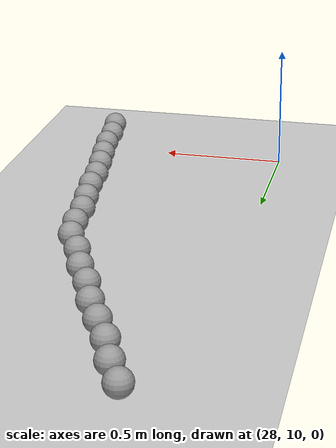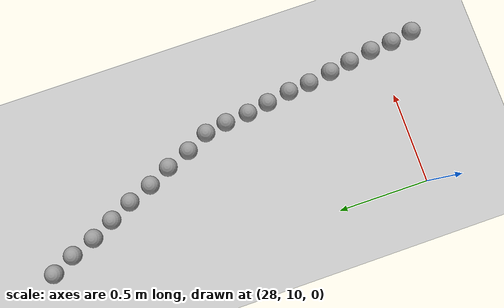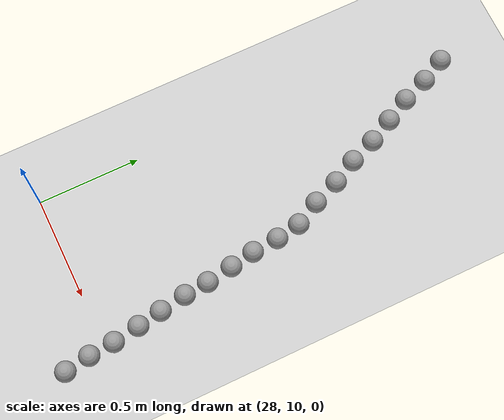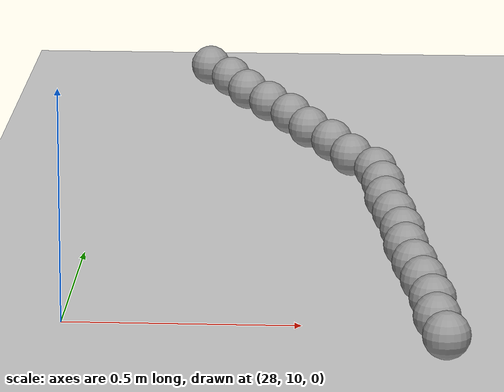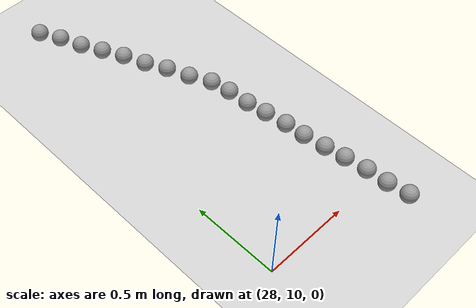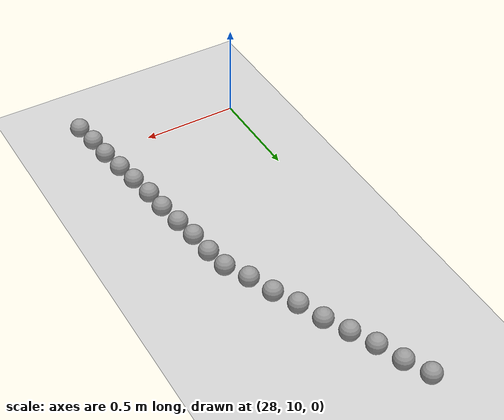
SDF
<sdf version="1.6">
 <world name="default">
  <model name="ground_plane">
   <static>1</static>
   <link name="link">
    <collision name="collision">
     <geometry><plane><normal>0 0 1</normal><size>100 100</size></plane></geometry>
     <surface><friction><ode><mu>100</mu><mu2>50</mu2></ode></friction></surface>
    </collision>
    <visual name="visual">
     <cast_shadows>0</cast_shadows>
     <geometry><plane><normal>0 0 1</normal><size>100 100</size></plane></geometry>
     <material>
      <script><uri>file://media/materials/scripts/gazebo.material</uri><name>Gazebo/Grey</name></script>
     </material>
    </visual>
   </link>
  </model>
  <model name="unit_sphere_0_242">
   <pose>28.180000 12.040000 0.050000 0 -0 0</pose>
   <link name="link">
    <inertial>
     <mass>1</mass>
     <inertia><ixx>0.1</ixx><ixy>0</ixy><ixz>0</ixz><iyy>0.1</iyy><iyz>0</iyz><izz>0.1</izz></inertia>
    </inertial>
    <collision name="collision"><geometry><sphere><radius>0.050000</radius></sphere></geometry></collision>
    <visual name="visual">
     <geometry><sphere><radius>0.050000</radius></sphere></geometry>
     <material>
      <script><name>Gazebo/Grey</name><uri>file://media/materials/scripts/gazebo.material</uri></script>
     </material>
    </visual>
   </link>
  </model>
  <model name="unit_sphere_0_243">
   <pose>28.240000 11.920000 0.050000 0 -0 0</pose>
   <link name="link">
    <inertial>
     <mass>1</mass>
     <inertia><ixx>0.1</ixx><ixy>0</ixy><ixz>0</ixz><iyy>0.1</iyy><iyz>0</iyz><izz>0.1</izz></inertia>
    </inertial>
    <collision name="collision"><geometry><sphere><radius>0.050000</radius></sphere></geometry></collision>
    <visual name="visual">
     <geometry><sphere><radius>0.050000</radius></sphere></geometry>
     <material>
      <script><name>Gazebo/Grey</name><uri>file://media/materials/scripts/gazebo.material</uri></script>
     </material>
    </visual>
   </link>
  </model>
  <model name="unit_sphere_0_244">
   <pose>28.290000 11.790000 0.050000 0 -0 0</pose>
   <link name="link">
    <inertial>
     <mass>1</mass>
     <inertia><ixx>0.1</ixx><ixy>0</ixy><ixz>0</ixz><iyy>0.1</iyy><iyz>0</iyz><izz>0.1</izz></inertia>
    </inertial>
    <collision name="collision"><geometry><sphere><radius>0.050000</radius></sphere></geometry></collision>
    <visual name="visual">
     <geometry><sphere><radius>0.050000</radius></sphere></geometry>
     <material>
      <script><name>Gazebo/Grey</name><uri>file://media/materials/scripts/gazebo.material</uri></script>
     </material>
    </visual>
   </link>
  </model>
  <model name="unit_sphere_0_245">
   <pose>28.350000 11.670000 0.050000 0 -0 0</pose>
   <link name="link">
    <inertial>
     <mass>1</mass>
     <inertia><ixx>0.1</ixx><ixy>0</ixy><ixz>0</ixz><iyy>0.1</iyy><iyz>0</iyz><izz>0.1</izz></inertia>
    </inertial>
    <collision name="collision"><geometry><sphere><radius>0.050000</radius></sphere></geometry></collision>
    <visual name="visual">
     <geometry><sphere><radius>0.050000</radius></sphere></geometry>
     <material>
      <script><name>Gazebo/Grey</name><uri>file://media/materials/scripts/gazebo.material</uri></script>
     </material>
    </visual>
   </link>
  </model>
  <model name="unit_sphere_0_246">
   <pose>28.410000 11.550000 0.050000 0 -0 0</pose>
   <link name="link">
    <inertial>
     <mass>1</mass>
     <inertia><ixx>0.1</ixx><ixy>0</ixy><ixz>0</ixz><iyy>0.1</iyy><iyz>0</iyz><izz>0.1</izz></inertia>
    </inertial>
    <collision name="collision"><geometry><sphere><radius>0.050000</radius></sphere></geometry></collision>
    <visual name="visual">
     <geometry><sphere><radius>0.050000</radius></sphere></geometry>
     <material>
      <script><name>Gazebo/Grey</name><uri>file://media/materials/scripts/gazebo.material</uri></script>
     </material>
    </visual>
   </link>
  </model>
  <model name="unit_sphere_0_247">
   <pose>28.460000 11.420000 0.050000 0 -0 0</pose>
   <link name="link">
    <inertial>
     <mass>1</mass>
     <inertia><ixx>0.1</ixx><ixy>0</ixy><ixz>0</ixz><iyy>0.1</iyy><iyz>0</iyz><izz>0.1</izz></inertia>
    </inertial>
    <collision name="collision"><geometry><sphere><radius>0.050000</radius></sphere></geometry></collision>
    <visual name="visual">
     <geometry><sphere><radius>0.050000</radius></sphere></geometry>
     <material>
      <script><name>Gazebo/Grey</name><uri>file://media/materials/scripts/gazebo.material</uri></script>
     </material>
    </visual>
   </link>
  </model>
  <model name="unit_sphere_0_248">
   <pose>28.520000 11.300000 0.050000 0 -0 0</pose>
   <link name="link">
    <inertial>
     <mass>1</mass>
     <inertia><ixx>0.1</ixx><ixy>0</ixy><ixz>0</ixz><iyy>0.1</iyy><iyz>0</iyz><izz>0.1</izz></inertia>
    </inertial>
    <collision name="collision"><geometry><sphere><radius>0.050000</radius></sphere></geometry></collision>
    <visual name="visual">
     <geometry><sphere><radius>0.050000</radius></sphere></geometry>
     <material>
      <script><name>Gazebo/Grey</name><uri>file://media/materials/scripts/gazebo.material</uri></script>
     </material>
    </visual>
   </link>
  </model>
  <model name="unit_sphere_0_249">
   <pose>28.570000 11.170000 0.050000 0 -0 0</pose>
   <link name="link">
    <inertial>
     <mass>1</mass>
     <inertia><ixx>0.1</ixx><ixy>0</ixy><ixz>0</ixz><iyy>0.1</iyy><iyz>0</iyz><izz>0.1</izz></inertia>
    </inertial>
    <collision name="collision"><geometry><sphere><radius>0.050000</radius></sphere></geometry></collision>
    <visual name="visual">
     <geometry><sphere><radius>0.050000</radius></sphere></geometry>
     <material>
      <script><name>Gazebo/Grey</name><uri>file://media/materials/scripts/gazebo.material</uri></script>
     </material>
    </visual>
   </link>
  </model>
  <model name="unit_sphere_0_250">
   <pose>28.630000 11.050000 0.050000 0 -0 0</pose>
   <link name="link">
    <inertial>
     <mass>1</mass>
     <inertia><ixx>0.1</ixx><ixy>0</ixy><ixz>0</ixz><iyy>0.1</iyy><iyz>0</iyz><izz>0.1</izz></inertia>
    </inertial>
    <collision name="collision"><geometry><sphere><radius>0.050000</radius></sphere></geometry></collision>
    <visual name="visual">
     <geometry><sphere><radius>0.050000</radius></sphere></geometry>
     <material>
      <script><name>Gazebo/Grey</name><uri>file://media/materials/scripts/gazebo.material</uri></script>
     </material>
    </visual>
   </link>
  </model>
  <model name="unit_sphere_0_251">
   <pose>28.650000 10.930000 0.050000 0 -0 0</pose>
   <link name="link">
    <inertial>
     <mass>1</mass>
     <inertia><ixx>0.1</ixx><ixy>0</ixy><ixz>0</ixz><iyy>0.1</iyy><iyz>0</iyz><izz>0.1</izz></inertia>
    </inertial>
    <collision name="collision"><geometry><sphere><radius>0.050000</radius></sphere></geometry></collision>
    <visual name="visual">
     <geometry><sphere><radius>0.050000</radius></sphere></geometry>
     <material>
      <script><name>Gazebo/Grey</name><uri>file://media/materials/scripts/gazebo.material</uri></script>
     </material>
    </visual>
   </link>
  </model>
  <model name="unit_sphere_0_252">
   <pose>28.660000 10.800000 0.050000 0 -0 0</pose>
   <link name="link">
    <inertial>
     <mass>1</mass>
     <inertia><ixx>0.1</ixx><ixy>0</ixy><ixz>0</ixz><iyy>0.1</iyy><iyz>0</iyz><izz>0.1</izz></inertia>
    </inertial>
    <collision name="collision"><geometry><sphere><radius>0.050000</radius></sphere></geometry></collision>
    <visual name="visual">
     <geometry><sphere><radius>0.050000</radius></sphere></geometry>
     <material>
      <script><name>Gazebo/Grey</name><uri>file://media/materials/scripts/gazebo.material</uri></script>
     </material>
    </visual>
   </link>
  </model>
  <model name="unit_sphere_0_253">
   <pose>28.680000 10.680000 0.050000 0 -0 0</pose>
   <link name="link">
    <inertial>
     <mass>1</mass>
     <inertia><ixx>0.1</ixx><ixy>0</ixy><ixz>0</ixz><iyy>0.1</iyy><iyz>0</iyz><izz>0.1</izz></inertia>
    </inertial>
    <collision name="collision"><geometry><sphere><radius>0.050000</radius></sphere></geometry></collision>
    <visual name="visual">
     <geometry><sphere><radius>0.050000</radius></sphere></geometry>
     <material>
      <script><name>Gazebo/Grey</name><uri>file://media/materials/scripts/gazebo.material</uri></script>
     </material>
    </visual>
   </link>
  </model>
  <model name="unit_sphere_0_254">
   <pose>28.700000 10.550000 0.050000 0 -0 0</pose>
   <link name="link">
    <inertial>
     <mass>1</mass>
     <inertia><ixx>0.1</ixx><ixy>0</ixy><ixz>0</ixz><iyy>0.1</iyy><iyz>0</iyz><izz>0.1</izz></inertia>
    </inertial>
    <collision name="collision"><geometry><sphere><radius>0.050000</radius></sphere></geometry></collision>
    <visual name="visual">
     <geometry><sphere><radius>0.050000</radius></sphere></geometry>
     <material>
      <script><name>Gazebo/Grey</name><uri>file://media/materials/scripts/gazebo.material</uri></script>
     </material>
    </visual>
   </link>
  </model>
  <model name="unit_sphere_0_255">
   <pose>28.710000 10.430000 0.050000 0 -0 0</pose>
   <link name="link">
    <inertial>
     <mass>1</mass>
     <inertia><ixx>0.1</ixx><ixy>0</ixy><ixz>0</ixz><iyy>0.1</iyy><iyz>0</iyz><izz>0.1</izz></inertia>
    </inertial>
    <collision name="collision"><geometry><sphere><radius>0.050000</radius></sphere></geometry></collision>
    <visual name="visual">
     <geometry><sphere><radius>0.050000</radius></sphere></geometry>
     <material>
      <script><name>Gazebo/Grey</name><uri>file://media/materials/scripts/gazebo.material</uri></script>
     </material>
    </visual>
   </link>
  </model>
  <model name="unit_sphere_0_256">
   <pose>28.730000 10.300000 0.050000 0 -0 0</pose>
   <link name="link">
    <inertial>
     <mass>1</mass>
     <inertia><ixx>0.1</ixx><ixy>0</ixy><ixz>0</ixz><iyy>0.1</iyy><iyz>0</iyz><izz>0.1</izz></inertia>
    </inertial>
    <collision name="collision"><geometry><sphere><radius>0.050000</radius></sphere></geometry></collision>
    <visual name="visual">
     <geometry><sphere><radius>0.050000</radius></sphere></geometry>
     <material>
      <script><name>Gazebo/Grey</name><uri>file://media/materials/scripts/gazebo.material</uri></script>
     </material>
    </visual>
   </link>
  </model>
  <model name="unit_sphere_0_257">
   <pose>28.750000 10.180000 0.050000 0 -0 0</pose>
   <link name="link">
    <inertial>
     <mass>1</mass>
     <inertia><ixx>0.1</ixx><ixy>0</ixy><ixz>0</ixz><iyy>0.1</iyy><iyz>0</iyz><izz>0.1</izz></inertia>
    </inertial>
    <collision name="collision"><geometry><sphere><radius>0.050000</radius></sphere></geometry></collision>
    <visual name="visual">
     <geometry><sphere><radius>0.050000</radius></sphere></geometry>
     <material>
      <script><name>Gazebo/Grey</name><uri>file://media/materials/scripts/gazebo.material</uri></script>
     </material>
    </visual>
   </link>
  </model>
  <model name="unit_sphere_0_258">
   <pose>28.770000 10.050000 0.050000 0 -0 0</pose>
   <link name="link">
    <inertial>
     <mass>1</mass>
     <inertia><ixx>0.1</ixx><ixy>0</ixy><ixz>0</ixz><iyy>0.1</iyy><iyz>0</iyz><izz>0.1</izz></inertia>
    </inertial>
    <collision name="collision"><geometry><sphere><radius>0.050000</radius></sphere></geometry></collision>
    <visual name="visual">
     <geometry><sphere><radius>0.050000</radius></sphere></geometry>
     <material>
      <script><name>Gazebo/Grey</name><uri>file://media/materials/scripts/gazebo.material</uri></script>
     </material>
    </visual>
   </link>
  </model>
  <model name="unit_sphere_0_259">
   <pose>28.780000 9.925000 0.050000 0 -0 0</pose>
   <link name="link">
    <inertial>
     <mass>1</mass>
     <inertia><ixx>0.1</ixx><ixy>0</ixy><ixz>0</ixz><iyy>0.1</iyy><iyz>0</iyz><izz>0.1</izz></inertia>
    </inertial>
    <collision name="collision"><geometry><sphere><radius>0.050000</radius></sphere></geometry></collision>
    <visual name="visual">
     <geometry><sphere><radius>0.050000</radius></sphere></geometry>
     <material>
      <script><name>Gazebo/Grey</name><uri>file://media/materials/scripts/gazebo.material</uri></script>
     </material>
    </visual>
   </link>
  </model>
  <model name="unit_sphere_0_260">
   <pose>28.800000 9.800000 0.050000 0 -0 0</pose>
   <link name="link">
    <inertial>
     <mass>1</mass>
     <inertia><ixx>0.1</ixx><ixy>0</ixy><ixz>0</ixz><iyy>0.1</iyy><iyz>0</iyz><izz>0.1</izz></inertia>
    </inertial>
    <collision name="collision"><geometry><sphere><radius>0.050000</radius></sphere></geometry></collision>
    <visual name="visual">
     <geometry><sphere><radius>0.050000</radius></sphere></geometry>
     <material>
      <script><name>Gazebo/Grey</name><uri>file://media/materials/scripts/gazebo.material</uri></script>
     </material>
    </visual>
   </link>
  </model>
 </world>
</sdf>
